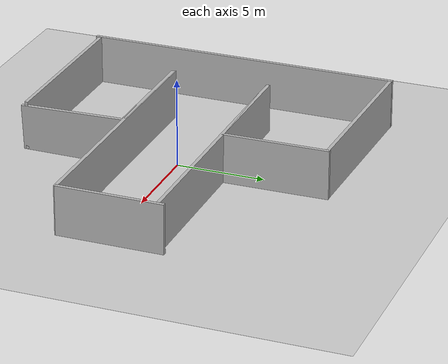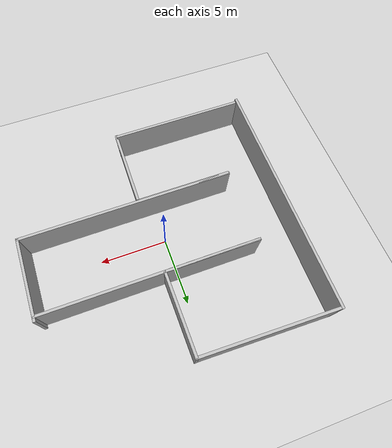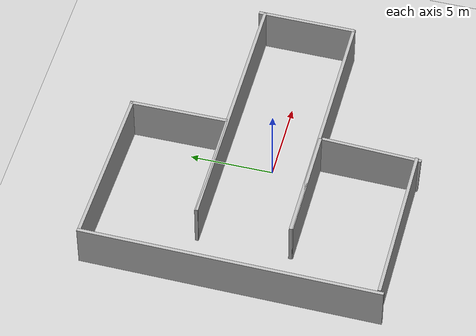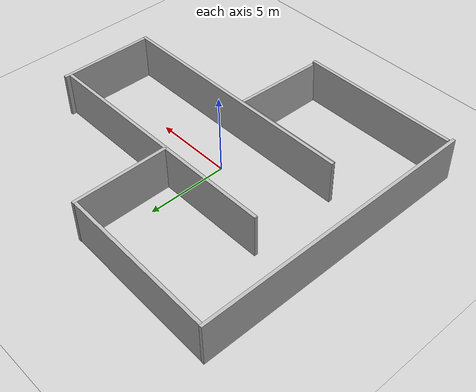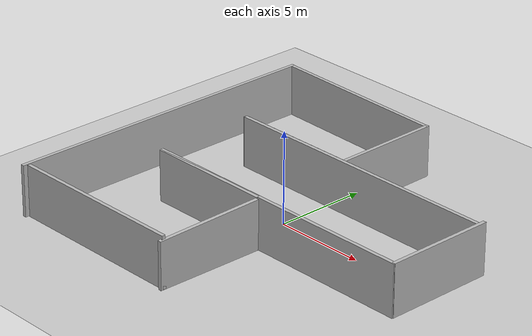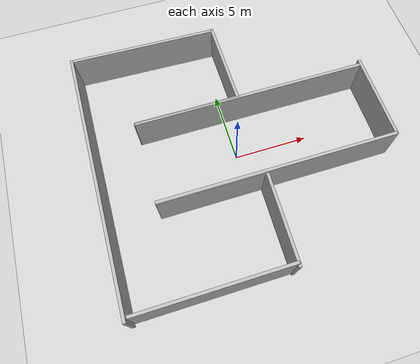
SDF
<sdf version="1.4">
 <world name="default">
  <light name="sun" type="directional">
   <pose>0 0 10 0 -0 0</pose>
   <diffuse>0.8 0.8 0.8 1</diffuse>
   <specular>0.2 0.2 0.2 1</specular>
   <attenuation>
    <range>1000</range>
    <constant>0.9</constant>
    <linear>0.01</linear>
    <quadratic>0.001</quadratic>
   </attenuation>
   <direction>-0.5 0.1 -0.9</direction>
  </light>
  <model name="ground_plane">
   <static>1</static>
   <link name="link">
    <collision name="collision">
     <geometry><plane><normal>0 0 1</normal><size>100 100</size></plane></geometry>
     <surface><friction><ode><mu>100</mu><mu2>50</mu2></ode></friction></surface>
    </collision>
    <visual name="visual">
     <cast_shadows>0</cast_shadows>
     <geometry><plane><normal>0 0 1</normal><size>100 100</size></plane></geometry>
     <material>
      <script><uri>file://media/materials/scripts/gazebo.material</uri><name>Gazebo/Grey</name></script>
     </material>
    </visual>
    <velocity_decay><linear>0</linear><angular>0</angular></velocity_decay>
   </link>
  </model>
  <physics type="ode">
   <max_step_size>0.001</max_step_size>
   <real_time_factor>1</real_time_factor>
   <real_time_update_rate>1000</real_time_update_rate>
   <gravity>0 0 -9.8</gravity>
  </physics>
  <scene><ambient>0.4 0.4 0.4 1</ambient><background>0.7 0.7 0.7 1</background><shadows>1</shadows></scene>
  <spherical_coordinates>
   <surface_model>EARTH_WGS84</surface_model>
   <latitude_deg>0</latitude_deg>
   <longitude_deg>0</longitude_deg>
   <elevation>0</elevation>
   <heading_deg>0</heading_deg>
  </spherical_coordinates>
  <model name="house">
   <static>1</static>
   <link name="link">
    <pose>0 0 1.4 0 -0 0</pose>
    <collision name="collision"><geometry><box><size>18 0.2 2.8</size></box></geometry></collision>
    <visual name="visual">
     <cast_shadows>0</cast_shadows>
     <geometry><box><size>18 0.2 2.8</size></box></geometry>
     <material>
      <script>
       <uri>model://house/materials/scripts</uri>
       <uri>model://house/materials/textures</uri>
       <name>vrc/house_wall4</name>
      </script>
     </material>
    </visual>
    <velocity_decay><linear>0</linear><angular>0</angular></velocity_decay>
   </link>
   <pose>-9.11986 0.2361 0 0 0 -1.57484</pose>
  </model>
  <model name="house_0">
   <static>1</static>
   <link name="link">
    <pose>0 0 1.4 0 -0 0</pose>
    <collision name="collision"><geometry><box><size>6 0.2 2.8</size></box></geometry></collision>
    <visual name="visual">
     <cast_shadows>0</cast_shadows>
     <geometry><box><size>6 0.2 2.8</size></box></geometry>
     <material>
      <script>
       <uri>model://house/materials/scripts</uri>
       <uri>model://house/materials/textures</uri>
       <name>vrc/house_wall6</name>
      </script>
     </material>
    </visual>
    <velocity_decay><linear>0</linear><angular>0</angular></velocity_decay>
   </link>
   <pose>0.929832 -5.66827 -0.120248 -0.040353 0.026683 -1.58671</pose>
  </model>
  <model name="house_1">
   <static>1</static>
   <link name="link">
    <pose>0 0 1.4 0 -0 0</pose>
    <collision name="collision"><geometry><box><size>6 0.2 2.8</size></box></geometry></collision>
    <visual name="visual">
     <cast_shadows>0</cast_shadows>
     <geometry><box><size>6 0.2 2.8</size></box></geometry>
     <material>
      <script>
       <uri>model://house/materials/scripts</uri>
       <uri>model://house/materials/textures</uri>
       <name>vrc/house_wall7</name>
      </script>
     </material>
    </visual>
    <velocity_decay><linear>0</linear><angular>0</angular></velocity_decay>
   </link>
   <pose>0.973318 5.99243 0 0 -0 1.5783</pose>
  </model>
  <model name="house_2">
   <static>1</static>
   <link name="link">
    <pose>0 0 1.4 0 -0 0</pose>
    <collision name="collision"><geometry><box><size>6 0.2 2.8</size></box></geometry></collision>
    <visual name="visual">
     <cast_shadows>0</cast_shadows>
     <geometry><box><size>6 0.2 2.8</size></box></geometry>
     <material>
      <script>
       <uri>model://house/materials/scripts</uri>
       <uri>model://house/materials/textures</uri>
       <name>vrc/house_wall8</name>
      </script>
     </material>
    </visual>
    <velocity_decay><linear>0</linear><angular>0</angular></velocity_decay>
   </link>
   <pose>9.93232 0.365206 0 0 -0 1.56734</pose>
  </model>
  <model name="house_3">
   <static>1</static>
   <link name="link">
    <pose>0 0 1.4 0 -0 0</pose>
    <collision name="collision"><geometry><box><size>16 0.2 2.8</size></box></geometry></collision>
    <visual name="visual">
     <cast_shadows>0</cast_shadows>
     <geometry><box><size>16 0.2 2.8</size></box></geometry>
     <material>
      <script>
       <uri>model://house/materials/scripts</uri>
       <uri>model://house/materials/textures</uri>
       <name>vrc/house_wall1</name>
      </script>
     </material>
    </visual>
    <velocity_decay><linear>0</linear><angular>0</angular></velocity_decay>
   </link>
   <pose>2 -2.59411 0 0 -0 0</pose>
  </model>
  <model name="house_4">
   <static>1</static>
   <link name="link">
    <pose>0 0 1.4 0 -0 0</pose>
    <collision name="collision"><geometry><box><size>16 0.2 2.8</size></box></geometry></collision>
    <visual name="visual">
     <cast_shadows>0</cast_shadows>
     <geometry><box><size>16 0.2 2.8</size></box></geometry>
     <material>
      <script>
       <uri>model://house/materials/scripts</uri>
       <uri>model://house/materials/textures</uri>
       <name>vrc/house_wall2</name>
      </script>
     </material>
    </visual>
    <velocity_decay><linear>0</linear><angular>0</angular></velocity_decay>
   </link>
   <pose>2 3 0 0 -0 0</pose>
  </model>
  <model name="house_9">
   <static>1</static>
   <link name="link">
    <pose>0 0 1.4 0 -0 0</pose>
    <collision name="collision"><geometry><box><size>10 0.2 2.8</size></box></geometry></collision>
    <visual name="visual">
     <cast_shadows>0</cast_shadows>
     <geometry><box><size>10 0.2 2.8</size></box></geometry>
     <material>
      <script>
       <uri>model://house/materials/scripts</uri>
       <uri>model://house/materials/textures</uri>
       <name>vrc/house_wall10</name>
      </script>
     </material>
    </visual>
    <velocity_decay><linear>0</linear><angular>0</angular></velocity_decay>
   </link>
   <pose>-4 -8.47098 0 0 -0 0</pose>
  </model>
  <model name="house_10">
   <static>1</static>
   <link name="link">
    <pose>0 0 1.4 0 -0 0</pose>
    <collision name="collision"><geometry><box><size>10 0.2 2.8</size></box></geometry></collision>
    <visual name="visual">
     <cast_shadows>0</cast_shadows>
     <geometry><box><size>10 0.2 2.8</size></box></geometry>
     <material>
      <script>
       <uri>model://house/materials/scripts</uri>
       <uri>model://house/materials/textures</uri>
       <name>vrc/house_wall5</name>
      </script>
     </material>
    </visual>
    <velocity_decay><linear>0</linear><angular>0</angular></velocity_decay>
   </link>
   <pose>-4 9 0 0 0 -0.025516</pose>
  </model>
  <model name="house_11">
   <static>1</static>
   <link name="link">
    <pose>0 0 1.4 0 -0 0</pose>
    <collision name="collision"><geometry><box><size>7 0.2 2.8</size></box></geometry></collision>
    <visual name="visual">
     <cast_shadows>0</cast_shadows>
     <geometry><box><size>7 0.2 2.8</size></box></geometry>
     <material>
      <script>
       <uri>model://house/materials/scripts</uri>
       <uri>model://house/materials/textures</uri>
       <name>vrc/house_wall3</name>
      </script>
     </material>
    </visual>
    <velocity_decay><linear>0</linear><angular>0</angular></velocity_decay>
   </link>
   <pose>-2.47863 -2.64651 0 0 -0 0</pose>
  </model>
  <model name="house_12">
   <static>1</static>
   <link name="link">
    <pose>0 0 1.4 0 -0 0</pose>
    <collision name="collision"><geometry><box><size>7 0.2 2.8</size></box></geometry></collision>
    <visual name="visual">
     <cast_shadows>0</cast_shadows>
     <geometry><box><size>7 0.2 2.8</size></box></geometry>
     <material>
      <script>
       <uri>model://house/materials/scripts</uri>
       <uri>model://house/materials/textures</uri>
       <name>vrc/house_wall9</name>
      </script>
     </material>
    </visual>
    <velocity_decay><linear>0</linear><angular>0</angular></velocity_decay>
   </link>
   <pose>-2.54389 3.00598 0 0 -0 0</pose>
  </model>
 </world>
</sdf>
